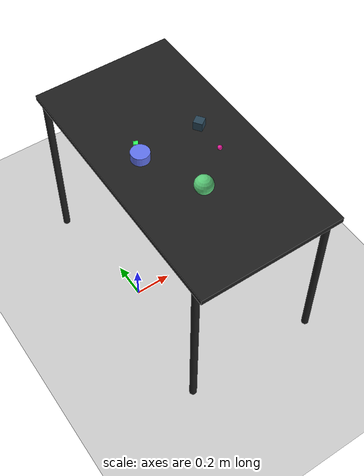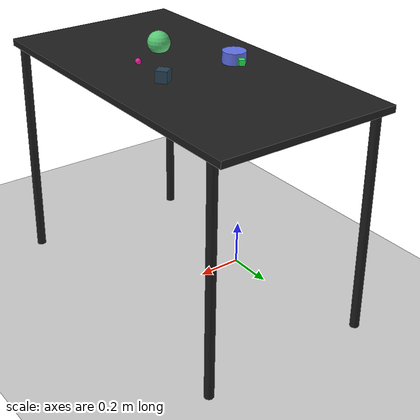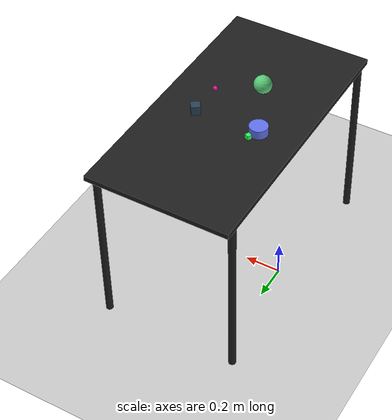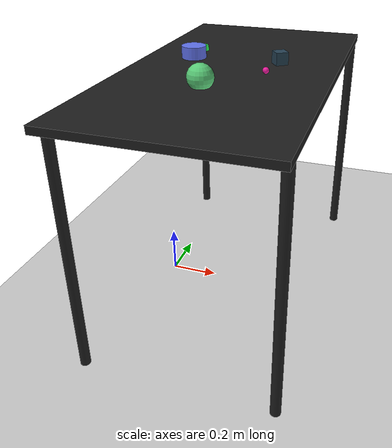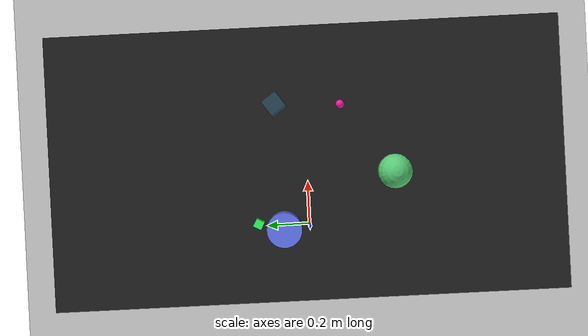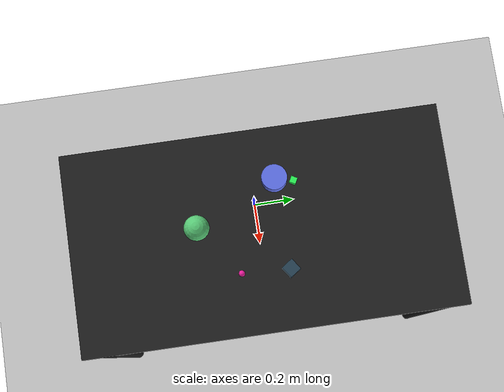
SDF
<?xml version="1.0" ?>
<sdf version="1.6">
  <world name="arm_world">
    <plugin filename="gz-sim-physics-system" name="gz::sim::systems::Physics">
      <engine>
        <filename>libgz-physics-bullet-featherstone-plugin.so</filename>
      </engine>
    </plugin>
    <plugin filename="gz-sim-user-commands-system" name="gz::sim::systems::UserCommands"/>
    <plugin filename="gz-sim-scene-broadcaster-system" name="gz::sim::systems::SceneBroadcaster"/>
    <plugin filename="gz-sim-sensors-system" name="gz::sim::systems::Sensors">
      <render_engine>ogre2</render_engine>
    </plugin>
    <gravity>0.0 0.0 -9.8</gravity>
    <scene>
      <shadows>false</shadows>
    </scene>
    <gui>
      <camera name="user_camera">
        <pose>0.75 -0.75 1.4 0 0.29 2.21</pose>
      </camera>
    </gui>
    <include>
      <uri>https://fuel.gazebosim.org/1.0/OpenRobotics/models/Sun</uri>
    </include>
    <model name="table">
      <static>true</static>
      <include>
        <uri>model://table</uri>
      </include>
      <pose>0.29 0 0 0 0 1.5708</pose>
    </model>
    <model name="ground_plane">
      <static>true</static>
      <link name="link">
        <collision name="collision">
          <geometry>
            <plane>
              <normal>0 0 1</normal>
            </plane>
          </geometry>
          <surface>
            <friction>
              <ode>
                <mu>1.0</mu>
                <mu2>1.0</mu2>
              </ode>
            </friction>
          </surface>
        </collision>
        <visual name="visual">
          <geometry>
            <plane>
              <normal>0 0 1</normal>
              <size>100 100</size>
            </plane>
          </geometry>
          <material>
            <ambient>0.8 0.8 0.8 1</ambient>
            <diffuse>0.8 0.8 0.8 1</diffuse>
            <specular>0.8 0.8 0.8 1</specular>
          </material>
        </visual>
      </link>
    </model>
    <model name="cube_s_0">
      <pose>0.123 0.144 1.05 0 0 2.65</pose>
      <link name="cube_s_0_link">
        <collision name="cube_s_0_collision">
          <geometry>
            <box>
              <size>0.025 0.025 0.025</size>
            </box>
          </geometry>
        </collision>
        <visual name="cube_s_0_visual">
          <geometry>
            <box>
              <size>0.025 0.025 0.025</size>
            </box>
          </geometry>
          <material>
            <ambient>0.17 0.99 0.35 1</ambient>
            <diffuse>0.17 0.99 0.35 1</diffuse>
          </material>
        </visual>
        <velocity_decay>
          <linear>1</linear>
          <angular>1</angular>
        </velocity_decay>
      </link>
    </model>
    <model name="cylinder_l_1">
      <pose>0.104 0.072 1.05 0 0 2.28</pose>
      <link name="cylinder_l_1_link">
        <collision name="cylinder_l_1_collision">
          <geometry>
            <cylinder>
              <radius>0.05</radius>
              <length>0.05</length>
            </cylinder>
          </geometry>
        </collision>
        <visual name="cylinder_l_1_visual">
          <geometry>
            <cylinder>
              <radius>0.05</radius>
              <length>0.05</length>
            </cylinder>
          </geometry>
          <material>
            <ambient>0.38 0.45 0.93 1</ambient>
            <diffuse>0.38 0.45 0.93 1</diffuse>
          </material>
        </visual>
        <velocity_decay>
          <linear>1</linear>
          <angular>1</angular>
        </velocity_decay>
      </link>
    </model>
    <model name="sphere_s_2">
      <pose>0.452 -0.102 1.05 0 0 1.32</pose>
      <link name="sphere_s_2_link">
        <collision name="sphere_s_2_collision">
          <geometry>
            <sphere>
              <radius>0.0125</radius>
            </sphere>
          </geometry>
        </collision>
        <visual name="sphere_s_2_visual">
          <geometry>
            <sphere>
              <radius>0.0125</radius>
            </sphere>
          </geometry>
          <material>
            <ambient>0.94 0.11 0.63 1</ambient>
            <diffuse>0.94 0.11 0.63 1</diffuse>
          </material>
        </visual>
        <velocity_decay>
          <linear>1</linear>
          <angular>1</angular>
        </velocity_decay>
      </link>
    </model>
    <model name="cube_m_3">
      <pose>0.46 0.086 1.05 0 0 2.19</pose>
      <link name="cube_m_3_link">
        <collision name="cube_m_3_collision">
          <geometry>
            <box>
              <size>0.05 0.05 0.05</size>
            </box>
          </geometry>
        </collision>
        <visual name="cube_m_3_visual">
          <geometry>
            <box>
              <size>0.05 0.05 0.05</size>
            </box>
          </geometry>
          <material>
            <ambient>0.15 0.26 0.33 1</ambient>
            <diffuse>0.15 0.26 0.33 1</diffuse>
          </material>
        </visual>
        <velocity_decay>
          <linear>1</linear>
          <angular>1</angular>
        </velocity_decay>
      </link>
    </model>
    <model name="sphere_l_4">
      <pose>0.254 -0.25 1.05 0 0 1.86</pose>
      <link name="sphere_l_4_link">
        <collision name="sphere_l_4_collision">
          <geometry>
            <sphere>
              <radius>0.05</radius>
            </sphere>
          </geometry>
        </collision>
        <visual name="sphere_l_4_visual">
          <geometry>
            <sphere>
              <radius>0.05</radius>
            </sphere>
          </geometry>
          <material>
            <ambient>0.35 0.8 0.47 1</ambient>
            <diffuse>0.35 0.8 0.47 1</diffuse>
          </material>
        </visual>
        <velocity_decay>
          <linear>1</linear>
          <angular>1</angular>
        </velocity_decay>
      </link>
    </model>
  </world>
</sdf>

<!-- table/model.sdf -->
<sdf version="1.5">
  <model name="table">
    <static>true</static>
    <link name="link">
      <collision name="surface">
        <pose>0 0 1.0 0 0 0</pose>
        <geometry>
          <box>
            <size>1.5 0.8 0.03</size>
          </box>
        </geometry>
        <surface>
          <friction>
            <ode>
              <mu>0.6</mu>
              <mu2>0.6</mu2>
            </ode>
          </friction>
        </surface>
      </collision>
      <visual name="surface">
        <pose>0 0 1.0 0 0 0</pose>
        <geometry>
          <box>
            <size>1.5 0.8 0.03</size>
          </box>
        </geometry>
        <material>
          <script>
            <uri>file://media/materials/scripts/gazebo.material</uri>
            <name>Gazebo/Black</name>
          </script>
        </material>
      </visual>
      <collision name="front_left_leg">
        <pose>0.68 0.38 0.5 0 0 0</pose>
        <geometry>
          <cylinder>
            <radius>0.02</radius>
            <length>1.0</length>
          </cylinder>
        </geometry>
      </collision>
      <visual name="front_left_leg">
        <pose>0.68 0.38 0.5 0 0 0</pose>
        <geometry>
          <cylinder>
            <radius>0.02</radius>
            <length>1.0</length>
          </cylinder>
        </geometry>
        <material>
          <script>
            <uri>file://media/materials/scripts/gazebo.material</uri>
            <name>Gazebo/Black</name>
          </script>
        </material>
      </visual>
      <collision name="front_right_leg">
        <pose>0.68 -0.38 0.5 0 0 0</pose>
        <geometry>
          <cylinder>
            <radius>0.02</radius>
            <length>1.0</length>
          </cylinder>
        </geometry>
      </collision>
      <visual name="front_right_leg">
        <pose>0.68 -0.38 0.5 0 0 0</pose>
        <geometry>
          <cylinder>
            <radius>0.02</radius>
            <length>1.0</length>
          </cylinder>
        </geometry>
        <material>
          <script>
            <uri>file://media/materials/scripts/gazebo.material</uri>
            <name>Gazebo/Black</name>
          </script>
        </material>
      </visual>
      <collision name="back_right_leg">
        <pose>-0.68 -0.38 0.5 0 0 0</pose>
        <geometry>
          <cylinder>
            <radius>0.02</radius>
            <length>1.0</length>
          </cylinder>
        </geometry>
      </collision>
      <visual name="back_right_leg">
        <pose>-0.68 -0.38 0.5 0 0 0</pose>
        <geometry>
          <cylinder>
            <radius>0.02</radius>
            <length>1.0</length>
          </cylinder>
        </geometry>
        <material>
          <script>
            <uri>file://media/materials/scripts/gazebo.material</uri>
            <name>Gazebo/Black</name>
          </script>
        </material>
      </visual>
      <collision name="back_left_leg">
        <pose>-0.68 0.38 0.5 0 0 0</pose>
        <geometry>
          <cylinder>
            <radius>0.02</radius>
            <length>1.0</length>
          </cylinder>
        </geometry>
      </collision>
      <visual name="back_left_leg">
        <pose>-0.68 0.38 0.5 0 0 0</pose>
        <geometry>
          <cylinder>
            <radius>0.02</radius>
            <length>1.0</length>
          </cylinder>
        </geometry>
        <material>
          <script>
            <uri>file://media/materials/scripts/gazebo.material</uri>
            <name>Gazebo/Black</name>
          </script>
        </material>
      </visual>
    </link>
  </model>
</sdf>
